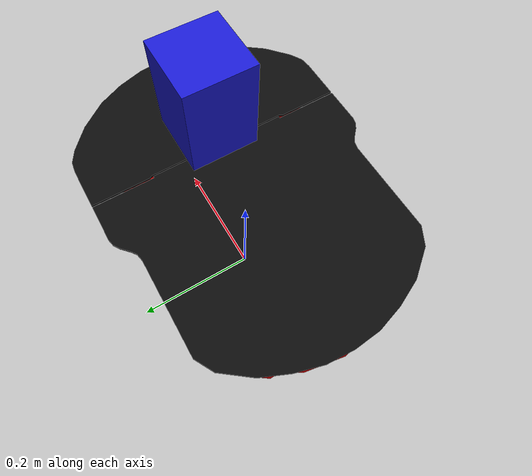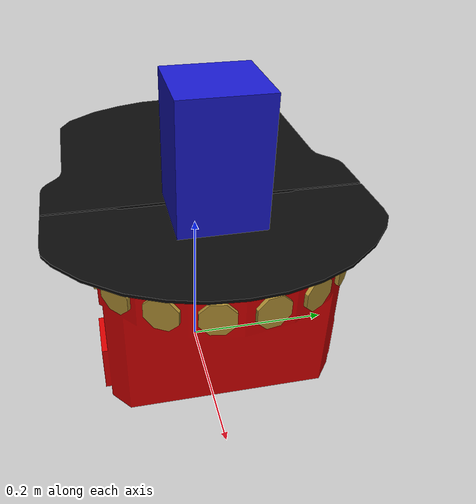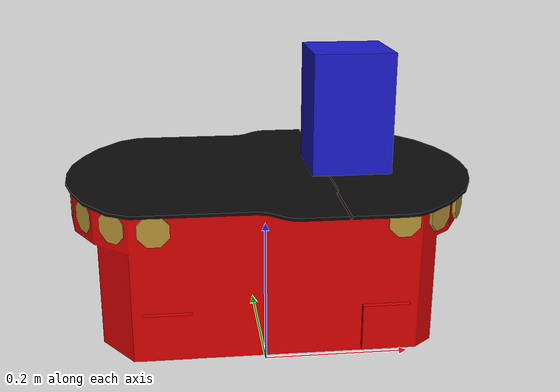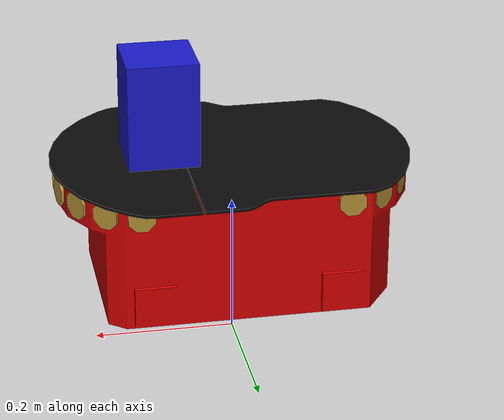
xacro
<?xml version="1.0"?>

<robot xmlns:sensor="http://playerstage.sourceforge.net/gazebo/xmlschema/#sensor"
       xmlns:controller="http://playerstage.sourceforge.net/gazebo/xmlschema/#controller"
       xmlns:interface="http://playerstage.sourceforge.net/gazebo/xmlschema/#interface"
       xmlns:xacro="http://ros.org/wiki/xacro"
>

<!-- Chassis -->
	<link name="base_link">
		<inertial>
			<mass value="10.0"/>
			<origin xyz="0 0 0.177"/>
			<inertia ixx="0.3338" ixy="0.0" ixz="0.0"
				 iyy="0.4783" iyz="0.0"
				 izz="0.3338"/>
		</inertial>
		<visual name="base_visual">
			<origin xyz="0 0 0.177" rpy="0 0 0"/>
			<geometry name="pioneer_geom">
				<mesh filename="package://p2os_urdf/meshes/p3at_meshes/chassis.stl"/>
			</geometry>
			<material name="ChassisRed">
				<color rgba="0.851 0.0 0.0 1.0"/>
			</material>
		</visual>
		<collision>
			<origin xyz="0 0 0.177" rpy="0 0 0"/>
				<geometry>
					<mesh filename="package://p2os_urdf/meshes/p3at_meshes/chassis.stl"/>
				</geometry>
		</collision>
	</link>
	<gazebo reference="base_link">
		<material value="Gazebo/Red"/>
	</gazebo>

<!-- Top -->
	<link name="top_plate">
		<inertial>
			<mass value="0.1"/>
			<origin xyz="-0.025 0 -0.223"/>
			<inertia ixx="1.0" ixy="0.0" ixz="0.0"
				 iyy="1.0" iyz="0.0"
 				izz="1.0"/>
		</inertial>
		<visual name="base_visual">
			<origin xyz="0 0 0" rpy="0 0 0"/>
			<geometry name="pioneer_geom">
				<mesh filename="package://p2os_urdf/meshes/p3at_meshes/top.stl"/>
			</geometry>
			<material name="TopBlack">
					<color rgba="0.038 0.038 0.038 1.0"/>
			</material>
		</visual>
		<collision>
			<origin xyz="0 0 0" rpy="0 0 0"/>
			<geometry>
				<box size="0 0 0"/>
			</geometry>
		</collision>
	</link>
	<gazebo reference="top_plate">
		<material value="Gazebo/Black"/>
	</gazebo>

	<joint name="base_top_joint" type="fixed">
		<origin xyz="0.003 0 0.274" rpy="0 0 0"/>
		<parent link="base_link"/>
		<child link="top_plate"/>
	</joint>
<!-- Front + Back Sonar -->
	<link name="front_sonar">
		<inertial>
			<mass value=".1"/>
			<origin xyz="0 0 0"/>
			<inertia ixx="1.0" ixy="0.0" ixz="0.0"
				 iyy="1.0" iyz="0.0" izz="1.0"/>
		</inertial>
		<visual name="base_visual">
			<origin xyz="0 0 0" rpy="0 0 0"/>
			<geometry name="pioneer_geom">
				<mesh filename="package://p2os_urdf/meshes/p3at_meshes/front_sonar.stl"/>
			</geometry>
			<material name="SonarYellow">
				<color rgba="0.715 0.583 0.210 1.0"/>
			</material>
		</visual>
		<collision>
			<origin xyz="0 0 0" rpy="0 0 0"/>
			<geometry>
				<box size="0 0 0"/>
			</geometry>
		</collision>
	</link>
	<gazebo reference="front_sonar">
		<material value="Gazebo/Yellow"/>
	</gazebo>

	<joint name="base_front_joint" type="fixed">
		<origin xyz="0.193 0 0.25" rpy="0 0 0"/>
		<parent link="base_link"/>
		<child link="front_sonar"/>
	</joint>

	<link name="back_sonar">
		<inertial>
			<mass value=".1"/>
			<origin xyz="0 0 0"/>
			<inertia ixx="1.0" ixy="0.0" ixz="0.0"
				 iyy="1.0" iyz="0.0" izz="1.0"/>
		</inertial>
		<visual name="base_visual">
			<origin xyz="0 0 0" rpy="0 0 0"/>
			<geometry name="pioneer_geom">
				<mesh filename="package://p2os_urdf/meshes/p3at_meshes/back_sonar.stl"/>
			</geometry>
			<material name="SonarYellow">
				<color rgba="0.715 0.583 0.210 1.0"/>
			</material>
		</visual>
		<collision>
			<origin xyz="0 0 0" rpy="0 0 0"/>
			<geometry>
				<box size="0 0 0"/>
			</geometry>
		</collision>
	</link>
	<gazebo reference="back_sonar">
		<material value="Gazebo/Yellow"/>
	</gazebo>

	<joint name="base_back_joint" type="fixed">
		<origin xyz="-0.187 0 0.247" rpy="0 0 0"/>
		<parent link="base_link"/>
		<child link="back_sonar"/>
	</joint>

<!--Added laser-->
	<link name="laser_link">
		<inertial>
			<mass value="0.1"/>
			<origin xyz="0 0 0"/>
			<inertia ixx="1.0" ixy="0.0" ixz="0.0"
				 iyy="1.0" iyz="0.0" izz="1.0"/>
		</inertial>
		<visual name="base_visual">
			<origin xyz="0 0 0" rpy="0 0 0"/>
			<geometry name="pioneer_geom">
				<box size=".1 .1 .15"/>
			</geometry>
			<material name="LaserBlue">
				<color rgba="0.1 0.1 0.8 1.0"/>
			</material>
		</visual>
		<collision>
			<origin xyz="0 0 0" rpy="0 0 0"/>
			<geometry>
				<box size=".1 .1 .15"/>
			</geometry>
		</collision>
	</link>

	<gazebo reference="laser_link">
		<material value="Gazebo/Blue"/>
	</gazebo>

	<joint name="laser_fix" type="fixed">
		<origin xyz=".1 0 0.08" rpy="0 0 0"/>
		<parent link="top_plate"/>
		<child link="laser_link"/>
	</joint>

  <!-- hokuyo -->
  <gazebo reference="laser_link">
    <sensor type="ray" name="head_hokuyo_sensor">
      <pose>0 0 0 0 0 0</pose>
      <visualize>true</visualize>
      <update_rate>40</update_rate>
      <ray>
        <scan>
          <horizontal>
            <samples>720</samples>
            <resolution>1</resolution>
            <min_angle>-1.570796</min_angle>
            <max_angle>1.570796</max_angle>
          </horizontal>
        </scan>
        <range>
          <min>0.10</min>
          <max>30.0</max>
          <resolution>0.01</resolution>
        </range>
        <noise>
          <type>gaussian</type>
          <mean>0.0</mean>
          <stddev>0.01</stddev>
        </noise>
      </ray>
      <plugin name="gazebo_ros_head_hokuyo_controller" filename="libgazebo_ros_laser.so">
        <topicName>/scan</topicName>
        <frameName>laser_link</frameName>
      </plugin>
    </sensor>
  </gazebo>

  <!-- camera -->
  <gazebo reference="laser_link">
    <sensor type="camera" name="camera1">
      <update_rate>30.0</update_rate>
      <camera name="head">
        <horizontal_fov>1.3962634</horizontal_fov>
        <image>
          <width>800</width>
          <height>800</height>
          <format>R8G8B8</format>
        </image>
        <clip>
          <near>0.02</near>
          <far>300</far>
        </clip>
        <noise>
          <type>gaussian</type>
          <!-- Noise is sampled independently per pixel on each frame.
               That pixel's noise value is added to each of its color
               channels, which at that point lie in the range [0,1]. -->
          <mean>0.0</mean>
          <stddev>0.007</stddev>
        </noise>
      </camera>
      <plugin name="camera_controller" filename="libgazebo_ros_camera.so">
        <alwaysOn>true</alwaysOn>
        <updateRate>0.0</updateRate>
        <cameraName>camera1</cameraName>
        <imageTopicName>image_raw</imageTopicName>
        <cameraInfoTopicName>camera_info</cameraInfoTopicName>
        <frameName>laser_link</frameName>
        <hackBaseline>0.07</hackBaseline>
        <distortionK1>0.0</distortionK1>
        <distortionK2>0.0</distortionK2>
        <distortionK3>0.0</distortionK3>
        <distortionT1>0.0</distortionT1>
        <distortionT2>0.0</distortionT2>
      </plugin>
    </sensor>
  </gazebo>

<!--end of added link-->

<!-- Front Axles + Wheels + Hubcaps -->
<xacro:macro name="p3at_front" params="suffix reflect">
	<link name="p3at_front_${suffix}_axle">
		<inertial>
			<mass value="0.1"/>
			<origin xyz="0 0 0"/>
			<inertia ixx="1.0" ixy="0.0" ixz="0.0"
				 iyy="1.0" iyz="0.0" izz="1.0"/>
  	 	</inertial>
	<visual name="base_visual">
		<origin xyz="0 0 0" rpy="0 0 0"/>
		<geometry name="pioneer_geom">
			<mesh filename="package://p2os_urdf/meshes/p3at_meshes/axle.stl"/>
		</geometry>
		<material name="AxleGrey">
			<color rgba="0.5 0.5 0.5 1"/>
		</material>
	</visual>
	<collision>
		<origin xyz="0 0 0" rpy="0 0 0"/>
		<geometry>
			<box size="0 0 0"/>
		</geometry>
	</collision>
	</link>
	<gazebo reference="p3at_front_${suffix}_axle">
		<material value="Gazebo/Grey"/>
	</gazebo>

	<joint name="base_front_${suffix}_axle_joint" type="fixed">
		<origin xyz="0.135 ${reflect*0.156} 0.111" rpy="0 0 0"/>
		<parent link="base_link"/>
		<child link="p3at_front_${suffix}_axle"/>
	</joint>

	<link name="p3at_front_${suffix}_hub">
		<inertial>
			<mass value="0.1"/>
			<origin xyz="0 0 0"/>
			<inertia ixx="1.0" ixy="0.0" ixz="0.0"
				 iyy="1.0" iyz="0.0" izz="1.0"/>
  	 	</inertial>
	<visual name="base_visual">
		<origin xyz="0 0 0" rpy="0 0 0"/>
		<geometry name="pioneer_geom">
			<mesh filename="package://p2os_urdf/meshes/p3at_meshes/${suffix}_hubcap.stl"/>
		</geometry>
		<material name="HubcapYellow">
			<color rgba="1.0 0.811 0.151 1.0"/>
		</material>
	</visual>
	<collision>
		<origin xyz="0 0 0" rpy="0 0 0"/>
		<geometry>
			<box size="0 0 0"/>
		</geometry>
	</collision>
	</link>
	<gazebo reference="p3at_front_${suffix}_hub">
		<material value="Gazebo/Yellow"/>
	</gazebo>

	<joint name="base_front_${suffix}_hub_joint" type="fixed">
		<origin xyz="0 ${reflect*0.041} 0" rpy="0 0 0"/>
		<parent link="p3at_front_${suffix}_axle"/>
		<child link="p3at_front_${suffix}_hub"/>
	</joint>

	<link name="p3at_front_${suffix}_wheel">
		<inertial>
			<mass value="0.5"/>
			<origin xyz="0 0 0"/>
			<inertia ixx="0.012411765597" ixy="0" ixz="0"
         iyy="0.015218160428" iyz="0" izz="0.011763977943"/>
      </inertial>
	<visual name="base_visual">
		<origin xyz="0 0 0" rpy="0 0 0"/>
		<geometry name="pioneer_geom">
			<mesh filename="package://p2os_urdf/meshes/p3at_meshes/wheel.stl"/>
		</geometry>
		<material name="WheelBlack">
			<color rgba="0.117 0.117 0.117 1"/>
		</material>
	</visual>
	<collision>
		<origin xyz="0 0 0" rpy="${-3.1415927/2} 0 0"/>
		<geometry>
	    <!--mesh filename="package://p2os_urdf/meshes/p3at_meshes/wheel.stl"/-->
	    <cylinder radius="0.111" length="0.075"/>
		</geometry>
	</collision>
	</link>
	<gazebo reference="p3at_front_${suffix}_wheel">
		<material value="Gazebo/Black"/>
	</gazebo>

	<joint name="p3at_front_${suffix}_wheel_joint" type="continuous">
  	<axis xyz="0 1 0"/>
    <anchor xyz="0 0 0"/>
    <limit effort="100" velocity="100" />
    <joint_properties damping="0.7"/>
		<origin xyz="0 0 0" rpy="0 0 0"/>
		<parent link="p3at_front_${suffix}_hub"/>
		<child link="p3at_front_${suffix}_wheel"/>
	</joint>

<!-- Back Axles + Wheels + Hubcaps -->
	<link name="p3at_back_${suffix}_axle">
		<inertial>
			<mass value="0.1"/>
			<origin xyz="0 0 0"/>
			<inertia ixx="1.0" ixy="0.0" ixz="0.0"
				 iyy="1.0" iyz="0.0" izz="1.0"/>
  	 	</inertial>
	<visual name="base_visual">
		<origin xyz="0 0 0" rpy="0 0 0"/>
		<geometry name="pioneer_geom">
			<mesh filename="package://p2os_urdf/meshes/p3at_meshes/axle.stl"/>
		</geometry>
		<material name="AxleGrey">
			<color rgba="0.5 0.5 0.5 1"/>
		</material>
	</visual>
	<collision>
		<origin xyz="0 0 0" rpy="0 0 0"/>
		<geometry>
			<mesh filename="package://p2os_urdf/meshes/p3at_meshes/axle.stl"/>
		</geometry>
	</collision>
	</link>
	<gazebo reference="p3at_back_${suffix}_axle">
		<material value="Gazebo/Grey"/>
	</gazebo>

	<joint name="bp3at_back_${suffix}_axle_joint" type="fixed">
		<origin xyz="-0.134 ${reflect*0.156} 0.111" rpy="0 0 0"/>
		<parent link="base_link"/>
		<child link="p3at_back_${suffix}_axle"/>
	</joint>

	<link name="p3at_back_${suffix}_hub">
		<inertial>
			<mass value="0.1"/>
			<origin xyz="0 0 0"/>
			<inertia ixx="1.0" ixy="0.0" ixz="0.0"
				 iyy="1.0" iyz="0.0" izz="1.0"/>
  	 	</inertial>
	<visual name="base_visual">
		<origin xyz="0 0 0" rpy="0 0 0"/>
		<geometry name="pioneer_geom">
			<mesh filename="package://p2os_urdf/meshes/p3at_meshes/${suffix}_hubcap.stl"/>
		</geometry>
		<material name="HubcapYellow"/>
	</visual>
	<collision>
		<origin xyz="0 0 0" rpy="0 0 0"/>
		<geometry>
			<mesh filename="package://p2os_urdf/meshes/p3at_meshes/${suffix}_hubcap.stl"/>
		</geometry>
	</collision>
	</link>
	<gazebo reference="p3at_back_${suffix}_hub">
		<material value="Gazebo/Yellow"/>
	</gazebo>

	<joint name="p3at_back_${suffix}_hub_joint" type="fixed">
		<origin xyz="-0 ${reflect*0.041} 0" rpy="0 0 0"/>
		<parent link="p3at_back_${suffix}_axle"/>
		<child link="p3at_back_${suffix}_hub"/>
	</joint>

	<link name="p3at_back_${suffix}_wheel">
		<inertial>
			<mass value="0.5"/>
			<origin xyz="0 0 0"/>
			<inertia ixx="0.012411765597" ixy="0" ixz="0"
         iyy="0.015218160428" iyz="0" izz="0.011763977943"/>
      </inertial>
	<visual name="base_visual">
		<origin xyz="0 0 0" rpy="0 0 0"/>
		<geometry name="pioneer_geom">
			<mesh filename="package://p2os_urdf/meshes/p3at_meshes/wheel.stl"/>
		</geometry>
		<material name="WheelBlack"/>
	</visual>
	<collision>
		<origin xyz="0 0 0" rpy="${-3.1415927/2} 0 0"/>
		<geometry>
	    <!--mesh filename="package://p2os_urdf/meshes/p3at_meshes/wheel.stl"/-->
	    <cylinder radius="0.111" length="0.075"/>
		</geometry>
	</collision>
	</link>
	<gazebo reference="p3at_back_${suffix}_wheel">
		<material value="Gazebo/Black"/>
	</gazebo>

	<joint name="p3at_back_${suffix}_wheel_joint" type="continuous">
	  <axis xyz="0 1 0"/>
    <anchor xyz="0 0 0"/>
    <limit effort="100" velocity="100" />
    <joint_properties damping="0.7"/>
		<origin xyz="0 0 0" rpy="0 0 0"/>
		<parent link="p3at_back_${suffix}_hub"/>
		<child link="p3at_back_${suffix}_wheel"/>
	</joint>

  <gazebo reference="p3at_back_${suffix}_wheel">
    <kp>10000.0</kp>  <!--For rubber kp = 1000000 kd = 100-->
    <kd>1.0</kd>   <!--kp=10000 kd=1 better represents the robot's behavior-->
    <mu1>10.0</mu1>
    <mu2>1.0</mu2>
    <fdir1>0 1 0</fdir1>
    <maxVel>2.5</maxVel>
    <minDepth>0.00</minDepth>
  </gazebo>

  <gazebo reference="p3at_front_${suffix}_wheel">
    <kp>10000.0</kp>
    <kd>1.0</kd>
    <mu1>10.0</mu1>
    <mu2>1.0</mu2>
    <fdir1>0 1 0</fdir1>
    <maxVel>2.5</maxVel>
    <minDepth>0.00</minDepth>
  </gazebo>

</xacro:macro>

<xacro:macro name="p3at_gazebo_ext">

<gazebo>
  <plugin name="skid_steer_drive_controller" filename="libgazebo_ros_skid_steer_drive.so">
    <updateRate>70.0</updateRate>
    <robotNamespace></robotNamespace>
    <leftFrontJoint>p3at_front_left_wheel_joint</leftFrontJoint>
    <rightFrontJoint>p3at_front_right_wheel_joint</rightFrontJoint>
    <leftRearJoint>p3at_back_left_wheel_joint</leftRearJoint>
    <rightRearJoint>p3at_back_right_wheel_joint</rightRearJoint>
    <wheelSeparation>0.4</wheelSeparation>
    <wheelDiameter>0.215</wheelDiameter>
    <robotBaseFrame>base_link</robotBaseFrame>
    <torque>300</torque>
    <topicName>cmd_vel</topicName>
  </plugin>
</gazebo>

</xacro:macro>

</robot>
